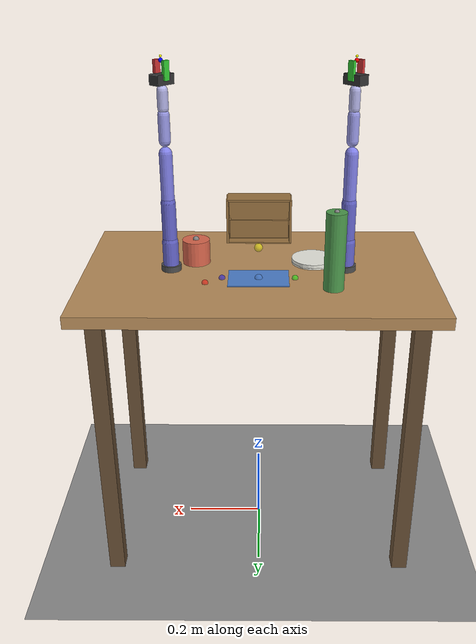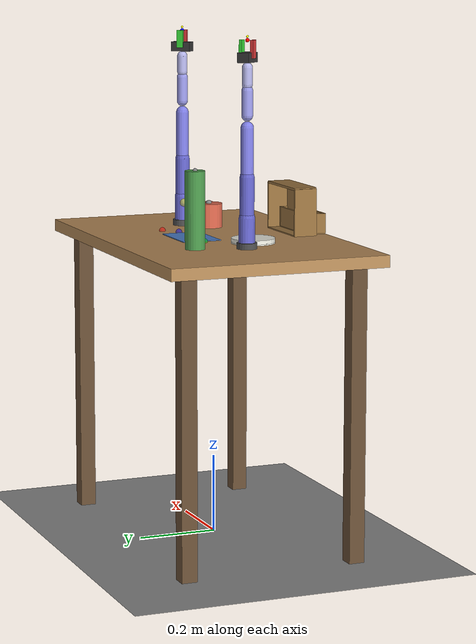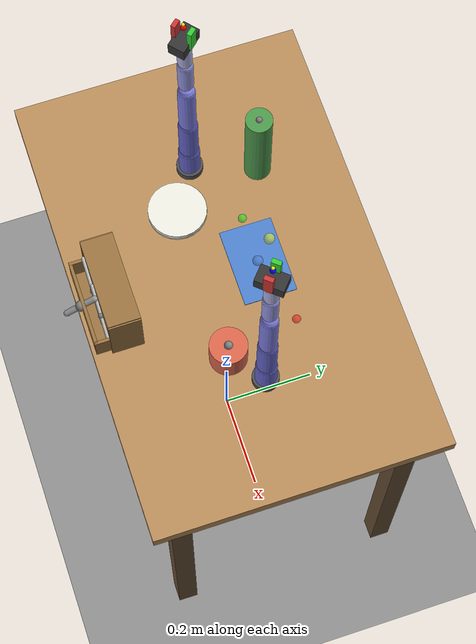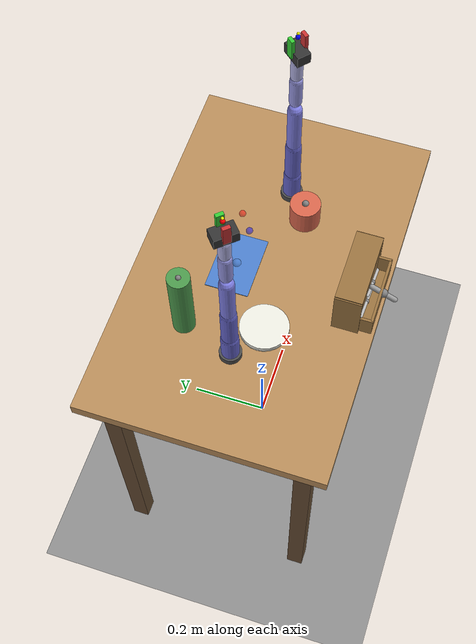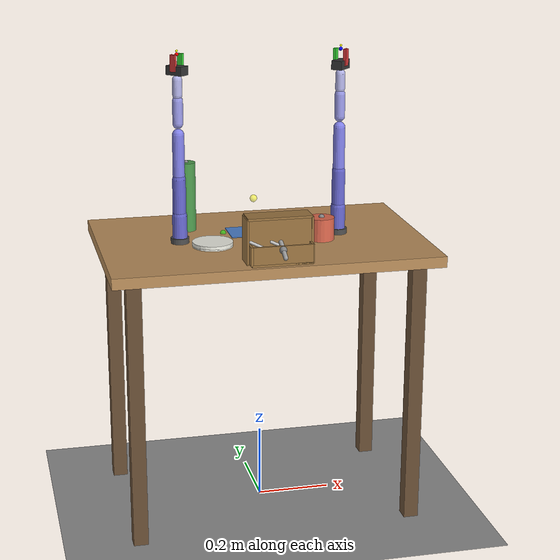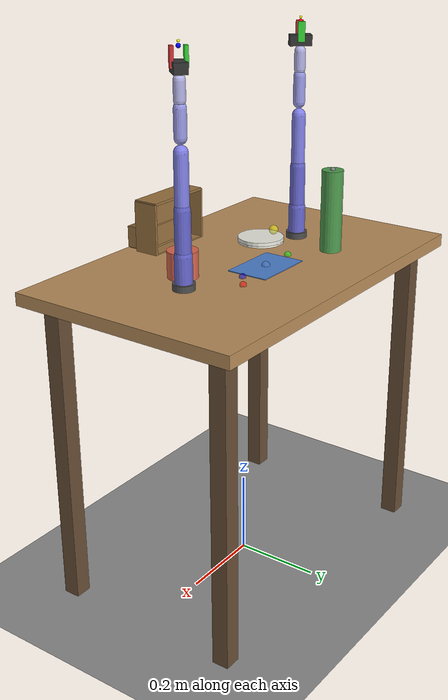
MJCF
<?xml version="1.0" encoding="utf-8"?>
<mujoco model="dinner_table">

    <compiler angle="radian" autolimits="true"/>

    <option gravity="0 0 -9.81" timestep="0.002" integrator="implicitfast">
        <flag contact="enable" frictionloss="enable"/>
    </option>

    <default>
        <joint limited="true"/>
        <geom contype="1" conaffinity="1" friction="1.0 0.05 0.01"
              solimp="0.9 0.95 0.001" solref="0.01 1"/>
        <motor ctrllimited="true"/>
    </default>

    <asset>
        <material name="table_mat"   rgba="0.72 0.55 0.35 1"/>
        <material name="plate_mat"   rgba="0.92 0.92 0.88 1"/>
        <material name="mug_mat"     rgba="0.85 0.4  0.3  1"/>
        <material name="bottle_mat"  rgba="0.3  0.6  0.3  1"/>
        <material name="cutlery_mat" rgba="0.75 0.75 0.75 1"/>
        <material name="cabinet_mat" rgba="0.6  0.45 0.25 1"/>
        <material name="placemat_mat" rgba="0.3 0.5  0.8  1"/>
        <material name="floor_mat"   rgba="0.55 0.55 0.55 1"/>
    </asset>

    <worldbody>
        <geom name="floor" type="plane" size="5 5 0.1" pos="0 0 0" material="floor_mat"/>

        <!-- Lighting -->
        <light name="key_light" pos="0.3 -0.5 2.0" dir="-0.2 0.4 -1"
               directional="true" diffuse="0.85 0.85 0.85" specular="0.3 0.3 0.3"/>
        <light name="fill_light" pos="-0.5 0.5 1.5" dir="0.3 -0.3 -1"
               directional="true" diffuse="0.35 0.35 0.35"/>

        <!-- Cameras (world-attached) -->
        <camera name="top_cam"  pos="0 0 1.45"    euler="0 0 0"   fovy="55"/>
        <camera name="front_cam" pos="0 -0.7 1.05" euler="25 0 0"  fovy="50"/>
        <camera name="op_cam"   pos="0.5 -0.6 1.1" euler="20 0 -30" fovy="50"/>

        <!-- TABLE -->
        <body name="table" pos="0 0 0">
            <geom name="table_top" type="box" pos="0 0 0.755" size="0.44 0.28 0.015"
                  material="table_mat" mass="20"/>
            <geom type="box" pos="-0.38 -0.22 0.38" size="0.02 0.02 0.38" rgba="0.4 0.3 0.2 1"/>
            <geom type="box" pos=" 0.38 -0.22 0.38" size="0.02 0.02 0.38" rgba="0.4 0.3 0.2 1"/>
            <geom type="box" pos="-0.38  0.22 0.38" size="0.02 0.02 0.38" rgba="0.4 0.3 0.2 1"/>
            <geom type="box" pos=" 0.38  0.22 0.38" size="0.02 0.02 0.38" rgba="0.4 0.3 0.2 1"/>
        </body>

        <!-- CABINET WITH DRAWER -->
        <body name="cabinet" pos="0 -0.245 0.77">
            <geom name="cab_back"  type="box" pos="0 0.005 0.06" size="0.085 0.003 0.060" material="cabinet_mat" mass="2"/>
            <geom name="cab_left"  type="box" pos="-0.085 0.03 0.06" size="0.003 0.030 0.060" material="cabinet_mat"/>
            <geom name="cab_right" type="box" pos=" 0.085 0.03 0.06" size="0.003 0.030 0.060" material="cabinet_mat"/>
            <geom name="cab_top"   type="box" pos="0 0.03 0.120" size="0.085 0.030 0.003" material="cabinet_mat"/>
            <geom name="cab_base"  type="box" pos="0 0.03 0.000" size="0.085 0.030 0.003" material="cabinet_mat"/>

            <body name="drawer" pos="0 0 0.030">
                <joint name="drawer_slide" type="slide" axis="0 1 0"
                       range="0 0.09" damping="5.0" armature="0.001"/>
                <geom name="drawer_front"     type="box" pos="0 -0.025 0"  size="0.080 0.003 0.025" material="cabinet_mat" mass="0.2"/>
                <geom name="drawer_back_wall" type="box" pos="0  0.025 0"  size="0.080 0.003 0.025" material="cabinet_mat"/>
                <geom name="drawer_lwall"     type="box" pos="-0.080 0 0"  size="0.003 0.028 0.025" material="cabinet_mat"/>
                <geom name="drawer_rwall"     type="box" pos=" 0.080 0 0"  size="0.003 0.028 0.025" material="cabinet_mat"/>
                <geom name="drawer_floor"     type="box" pos="0 0 -0.025"  size="0.080 0.028 0.003" material="cabinet_mat"/>
                <geom name="drawer_handle"    type="capsule" pos="0 -0.030 0.015" size="0.006 0.030"
                      euler="90 0 0" rgba="0.6 0.6 0.6 1" mass="0.05"/>
                <site name="drawer_handle_site" pos="0 -0.030 0.015" size="0.010"/>
                <!-- Fork and spoon sites (reference positions) -->
                <site name="fork_in_drawer"  pos="-0.025 0 0.005" size="0.005" rgba="0.8 0.8 0 0.5"/>
                <site name="spoon_in_drawer" pos=" 0.025 0 0.005" size="0.005" rgba="0.8 0.8 0 0.5"/>
            </body>
        </body>

        <!-- TABLE OBJECTS -->
        <!-- Fork & Spoon: world-level free bodies, welded to drawer initially -->
        <!-- Cabinet at y=-0.245, drawer body at z=0.77+0.03=0.80, drawer starts closed (y_offset=0) -->
        <body name="fork" pos="-0.025 -0.245 0.805">
            <freejoint name="fork_joint"/>
            <inertial pos="0 0 0" mass="0.025" diaginertia="0.00002 0.00002 0.000002"/>
            <geom name="fork_geom" type="capsule" size="0.004 0.060" euler="0 90 0"
                  rgba="0.75 0.75 0.75 1" friction="1.0 0.1 0.01" contype="3" conaffinity="3"/>
            <site name="fork_site" pos="0 0 0" size="0.006"/>
        </body>

        <body name="spoon" pos="0.025 -0.245 0.805">
            <freejoint name="spoon_joint"/>
            <inertial pos="0 0 0" mass="0.020" diaginertia="0.00002 0.00002 0.000002"/>
            <geom name="spoon_geom" type="capsule" size="0.004 0.055" euler="0 90 0"
                  rgba="0.75 0.75 0.75 1" friction="1.0 0.1 0.01" contype="3" conaffinity="3"/>
            <site name="spoon_site" pos="0 0 0" size="0.006"/>
        </body>
        <!-- Plate (staging on table left, to be placed on placemat) -->
        <body name="plate" pos="-0.14 -0.05 0.772">
            <freejoint name="plate_joint"/>
            <inertial pos="0 0 0" mass="0.3" diaginertia="0.0004 0.0004 0.0008"/>
            <geom name="plate_base" type="cylinder" size="0.055 0.003"
                  material="plate_mat" friction="0.8 0.05 0.01" contype="3" conaffinity="3"/>
            <geom name="plate_rim"  type="cylinder" size="0.055 0.005" pos="0 0 0.006"
                  material="plate_mat" friction="0.8 0.05 0.01" contype="3" conaffinity="3"/>
            <site name="plate_site" pos="0 0 0" size="0.008"/>
        </body>

        <!-- Mug (staging on table right, to be placed at target_mug) -->
        <body name="mug" pos="0.16 -0.05 0.792">
            <freejoint name="mug_joint"/>
            <inertial pos="0 0 0.04" mass="0.25" diaginertia="0.0002 0.0002 0.0002"/>
            <geom name="mug_wall" type="cylinder" size="0.035 0.040"
                  material="mug_mat" friction="0.8 0.05 0.01" contype="3" conaffinity="3"/>
            <site name="mug_site" pos="0 0 0.04" size="0.008"/>
        </body>

        <body name="bottle" pos="-0.18 0.12 0.862">
            <freejoint name="bottle_joint"/>
            <inertial pos="0 0 0.1" mass="0.5" diaginertia="0.0003 0.0003 0.0001"/>
            <geom name="bottle_geom" type="cylinder" size="0.025 0.100"
                  material="bottle_mat" friction="0.8 0.05 0.01" contype="3" conaffinity="3"/>
            <site name="bottle_site" pos="0 0 0.1" size="0.006"/>
        </body>

        <!-- Placemat indicator (no collision) -->
        <body name="placemat_body" pos="0 0.06 0.771">
            <geom name="placemat_geom" type="box" size="0.075 0.050 0.001"
                  material="placemat_mat" contype="0" conaffinity="0" mass="0"/>
        </body>

        <!-- TARGET SITES for scoring predicates -->
        <site name="target_fork"  pos="-0.09 0.06 0.772" size="0.008" rgba="0 1 0 0.5"/>
        <site name="target_spoon" pos=" 0.09 0.06 0.772" size="0.008" rgba="0 0 1 0.5"/>
        <site name="placemat"     pos=" 0.00 0.06 0.772" size="0.010" rgba="0.3 0.5 0.8 0.5"/>
        <site name="target_mug"   pos=" 0.13 0.09 0.772" size="0.008" rgba="1 0 0 0.5"/>
        <site name="handoff_site" pos=" 0.00 0.08 0.860" size="0.010" rgba="1 1 0 0.5"/>

        <!-- ROBOT ARMS -->

        <!-- LEFT ARM -->
        <body name="left_arm_base" pos="-0.22 0 0.76" euler="0 0 18.0">
            <inertial pos="0 0 0" mass="0.5" diaginertia="0.01 0.01 0.01"/>
            <geom name="left_base_geom" type="cylinder" size="0.025 0.025" rgba="0.3 0.3 0.3 1"/>

            <body name="left_link1" pos="0 0 0.045">
                <joint name="left_shoulder_pan" type="hinge" axis="0 0 1"
                       range="-2.8 2.8" damping="0.5" armature="0.05"/>
                <inertial pos="0 0 0.03" mass="0.3" diaginertia="0.005 0.005 0.005"/>
                <geom type="capsule" size="0.020 0.040" rgba="0.4 0.4 0.8 1"/>

                <body name="left_link2" pos="0 0 0.08">
                    <joint name="left_shoulder_lift" type="hinge" axis="0 1 0"
                           range="-1.8 1.8" damping="0.5" armature="0.05"/>
                    <inertial pos="0 0 0.05" mass="0.3" diaginertia="0.005 0.005 0.005"/>
                    <geom type="capsule" size="0.018 0.060" rgba="0.4 0.4 0.8 1"/>

                    <body name="left_link3" pos="0 0 0.125">
                        <joint name="left_elbow_flex" type="hinge" axis="0 1 0"
                               range="-2.5 2.5" damping="0.3" armature="0.03"/>
                        <inertial pos="0 0 0.05" mass="0.2" diaginertia="0.003 0.003 0.003"/>
                        <geom type="capsule" size="0.016 0.055" rgba="0.5 0.5 0.9 1"/>

                        <body name="left_link4" pos="0 0 0.115">
                            <joint name="left_wrist_flex" type="hinge" axis="0 1 0"
                                   range="-2.5 2.5" damping="0.1" armature="0.01"/>
                            <inertial pos="0 0 0.03" mass="0.1" diaginertia="0.001 0.001 0.001"/>
                            <geom type="capsule" size="0.014 0.030" rgba="0.6 0.6 0.9 1"/>

                            <body name="left_link5" pos="0 0 0.065">
                                <joint name="left_wrist_roll" type="hinge" axis="0 0 1"
                                       range="-3.14 3.14" damping="0.05" armature="0.005"/>
                                <inertial pos="0 0 0.02" mass="0.08" diaginertia="0.0005 0.0005 0.0005"/>
                                <geom type="capsule" size="0.013 0.020" rgba="0.7 0.7 0.9 1"/>

                                <body name="left_gripper_base" pos="0 0 0.045">
                                    <inertial pos="0 0 0.01" mass="0.05" diaginertia="0.0002 0.0002 0.0002"/>
                                    <geom type="box" size="0.025 0.015 0.012" rgba="0.2 0.2 0.2 1"/>
                                    <!-- Wrist camera: pos/euler only, no site attribute -->
                                    <camera name="left_wrist_cam" pos="0 0.02 0.015" euler="90 0 0" fovy="60"/>
                                    <!-- Fixed jaw -->
                                    <body name="left_fixed_jaw" pos="0 -0.015 0.020">
                                        <inertial pos="0 0 0.01" mass="0.02" diaginertia="0.0001 0.0001 0.0001"/>
                                        <geom name="left_fixed_jaw_geom" type="box" size="0.008 0.004 0.022"
                                              rgba="0.8 0.2 0.2 1" contype="1" conaffinity="1" friction="1.5 0.1 0.1"/>
                                    </body>
                                    <!-- Moving jaw -->
                                    <body name="left_moving_jaw" pos="0 0.015 0.020">
                                        <joint name="left_gripper_joint" type="slide" axis="0 1 0"
                                               range="0 0.04" damping="0.5" armature="0.001"/>
                                        <inertial pos="0 0 0.01" mass="0.02" diaginertia="0.0001 0.0001 0.0001"/>
                                        <geom name="left_moving_jaw_geom" type="box" size="0.008 0.004 0.022"
                                              rgba="0.2 0.8 0.2 1" contype="1" conaffinity="1" friction="1.5 0.1 0.1"/>
                                    </body>
                                    <!-- Jaw meeting-point site (41 mm forward of wrist) -->
                                    <site name="left_jaw_site"   pos="0 0 0.041" size="0.005" rgba="1 0 0 1"/>
                                    <site name="left_grasp_site" pos="0 0 0.050" size="0.003" rgba="1 1 0 1"/>
                                </body>
                            </body>
                        </body>
                    </body>
                </body>
            </body>
        </body>

        <!-- RIGHT ARM -->
        <body name="right_arm_base" pos="0.22 0 0.76" euler="0 0 -18.0">
            <inertial pos="0 0 0" mass="0.5" diaginertia="0.01 0.01 0.01"/>
            <geom name="right_base_geom" type="cylinder" size="0.025 0.025" rgba="0.3 0.3 0.3 1"/>

            <body name="right_link1" pos="0 0 0.045">
                <joint name="right_shoulder_pan" type="hinge" axis="0 0 1"
                       range="-2.8 2.8" damping="0.5" armature="0.05"/>
                <inertial pos="0 0 0.03" mass="0.3" diaginertia="0.005 0.005 0.005"/>
                <geom type="capsule" size="0.020 0.040" rgba="0.4 0.4 0.8 1"/>

                <body name="right_link2" pos="0 0 0.08">
                    <joint name="right_shoulder_lift" type="hinge" axis="0 1 0"
                           range="-1.8 1.8" damping="0.5" armature="0.05"/>
                    <inertial pos="0 0 0.05" mass="0.3" diaginertia="0.005 0.005 0.005"/>
                    <geom type="capsule" size="0.018 0.060" rgba="0.4 0.4 0.8 1"/>

                    <body name="right_link3" pos="0 0 0.125">
                        <joint name="right_elbow_flex" type="hinge" axis="0 1 0"
                               range="-2.5 2.5" damping="0.3" armature="0.03"/>
                        <inertial pos="0 0 0.05" mass="0.2" diaginertia="0.003 0.003 0.003"/>
                        <geom type="capsule" size="0.016 0.055" rgba="0.5 0.5 0.9 1"/>

                        <body name="right_link4" pos="0 0 0.115">
                            <joint name="right_wrist_flex" type="hinge" axis="0 1 0"
                                   range="-2.5 2.5" damping="0.1" armature="0.01"/>
                            <inertial pos="0 0 0.03" mass="0.1" diaginertia="0.001 0.001 0.001"/>
                            <geom type="capsule" size="0.014 0.030" rgba="0.6 0.6 0.9 1"/>

                            <body name="right_link5" pos="0 0 0.065">
                                <joint name="right_wrist_roll" type="hinge" axis="0 0 1"
                                       range="-3.14 3.14" damping="0.05" armature="0.005"/>
                                <inertial pos="0 0 0.02" mass="0.08" diaginertia="0.0005 0.0005 0.0005"/>
                                <geom type="capsule" size="0.013 0.020" rgba="0.7 0.7 0.9 1"/>

                                <body name="right_gripper_base" pos="0 0 0.045">
                                    <inertial pos="0 0 0.01" mass="0.05" diaginertia="0.0002 0.0002 0.0002"/>
                                    <geom type="box" size="0.025 0.015 0.012" rgba="0.2 0.2 0.2 1"/>
                                    <!-- Wrist camera: pos/euler only, no site attribute -->
                                    <camera name="right_wrist_cam" pos="0 0.02 0.015" euler="-90 0 0" fovy="60"/>
                                    <!-- Fixed jaw -->
                                    <body name="right_fixed_jaw" pos="0 -0.015 0.020">
                                        <inertial pos="0 0 0.01" mass="0.02" diaginertia="0.0001 0.0001 0.0001"/>
                                        <geom name="right_fixed_jaw_geom" type="box" size="0.008 0.004 0.022"
                                              rgba="0.8 0.2 0.2 1" contype="1" conaffinity="1" friction="1.5 0.1 0.1"/>
                                    </body>
                                    <!-- Moving jaw -->
                                    <body name="right_moving_jaw" pos="0 0.015 0.020">
                                        <joint name="right_gripper_joint" type="slide" axis="0 1 0"
                                               range="0 0.04" damping="0.5" armature="0.001"/>
                                        <inertial pos="0 0 0.01" mass="0.02" diaginertia="0.0001 0.0001 0.0001"/>
                                        <geom name="right_moving_jaw_geom" type="box" size="0.008 0.004 0.022"
                                              rgba="0.2 0.8 0.2 1" contype="1" conaffinity="1" friction="1.5 0.1 0.1"/>
                                    </body>
                                    <!-- Jaw meeting-point site (41 mm forward of wrist) -->
                                    <site name="right_jaw_site"   pos="0 0 0.041" size="0.005" rgba="0 0 1 1"/>
                                    <site name="right_grasp_site" pos="0 0 0.050" size="0.003" rgba="1 1 0 1"/>
                                </body>
                            </body>
                        </body>
                    </body>
                </body>
            </body>
        </body>

    </worldbody>

    <!-- ACTUATORS: 12 position-controlled joints (6 per arm) -->
    <actuator>
        <position name="left_shoulder_pan"  joint="left_shoulder_pan"  kp="120" ctrlrange="-2.8 2.8"/>
        <position name="left_shoulder_lift" joint="left_shoulder_lift" kp="120" ctrlrange="-1.8 1.8"/>
        <position name="left_elbow_flex"    joint="left_elbow_flex"    kp="80"  ctrlrange="-2.5 2.5"/>
        <position name="left_wrist_flex"    joint="left_wrist_flex"    kp="40"  ctrlrange="-2.5 2.5"/>
        <position name="left_wrist_roll"    joint="left_wrist_roll"    kp="20"  ctrlrange="-3.14 3.14"/>
        <position name="left_gripper"       joint="left_gripper_joint" kp="80"  ctrlrange="0 0.04"/>
        <position name="right_shoulder_pan"  joint="right_shoulder_pan"  kp="120" ctrlrange="-2.8 2.8"/>
        <position name="right_shoulder_lift" joint="right_shoulder_lift" kp="120" ctrlrange="-1.8 1.8"/>
        <position name="right_elbow_flex"    joint="right_elbow_flex"    kp="80"  ctrlrange="-2.5 2.5"/>
        <position name="right_wrist_flex"    joint="right_wrist_flex"    kp="40"  ctrlrange="-2.5 2.5"/>
        <position name="right_wrist_roll"    joint="right_wrist_roll"    kp="20"  ctrlrange="-3.14 3.14"/>
        <position name="right_gripper"       joint="right_gripper_joint" kp="80"  ctrlrange="0 0.04"/>
    </actuator>

    <!-- EQUALITY CONSTRAINTS -->
    <equality>
        <!-- Fork and spoon start welded to drawer (controller releases these when it opens drawer) -->
        <weld name="fork_drawer_weld"  active="true"  body1="drawer" body2="fork"
              relpose="-0.025 0 0.005  1 0 0 0" solref="0.005 1" solimp="0.99 0.999 0.0001"/>
        <weld name="spoon_drawer_weld" active="true"  body1="drawer" body2="spoon"
              relpose=" 0.025 0 0.005  1 0 0 0" solref="0.005 1" solimp="0.99 0.999 0.0001"/>
        <!-- Grasp welds (inactive initially, controller activates these to grasp objects) -->
        <weld name="left_grasp_weld"  active="false" body1="left_gripper_base"  body2="fork"
              relpose="0 0 0.05  1 0 0 0" solref="0.005 1" solimp="0.99 0.999 0.0001"/>
        <weld name="right_grasp_weld" active="false" body1="right_gripper_base" body2="spoon"
              relpose="0 0 0.05  1 0 0 0" solref="0.005 1" solimp="0.99 0.999 0.0001"/>
        <weld name="left_grasp_weld2"  active="false" body1="left_gripper_base"  body2="mug"
              relpose="0 0 0.05  1 0 0 0" solref="0.005 1" solimp="0.99 0.999 0.0001"/>
        <weld name="right_grasp_weld2" active="false" body1="right_gripper_base" body2="plate"
              relpose="0 0 0.05  1 0 0 0" solref="0.005 1" solimp="0.99 0.999 0.0001"/>
    </equality>

    <!-- KEYFRAME: arm joints only (freejoint bodies use their body pos declaration) -->
    <keyframe>
        <key name="home" ctrl="0 0 0 0 0 0.04  0 0 0 0 0 0.04"/>
    </keyframe>

</mujoco>
